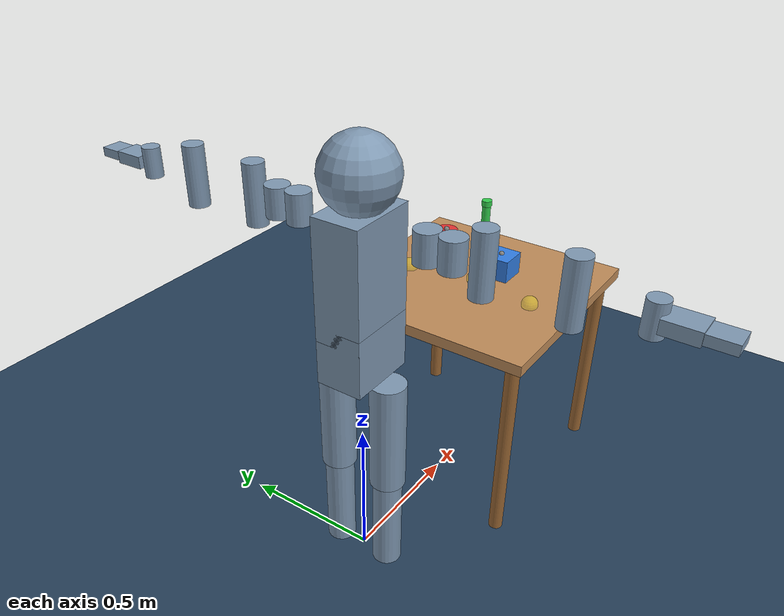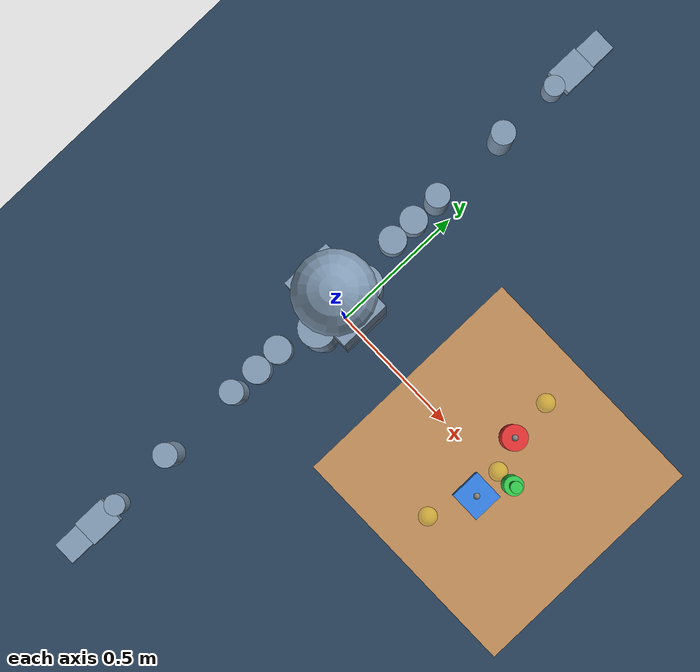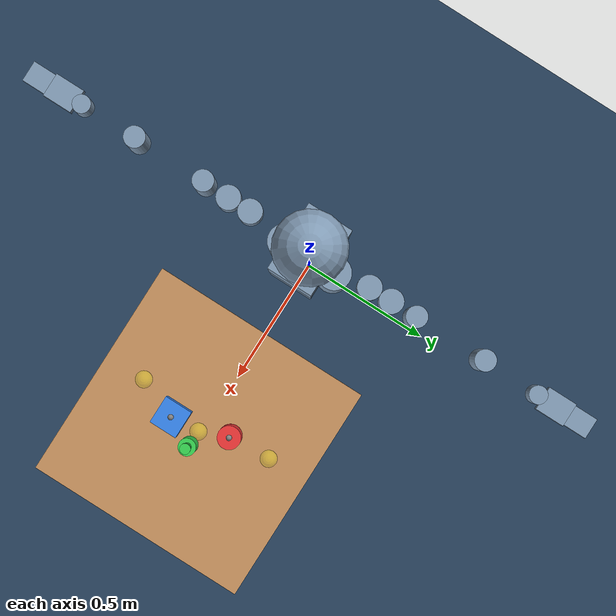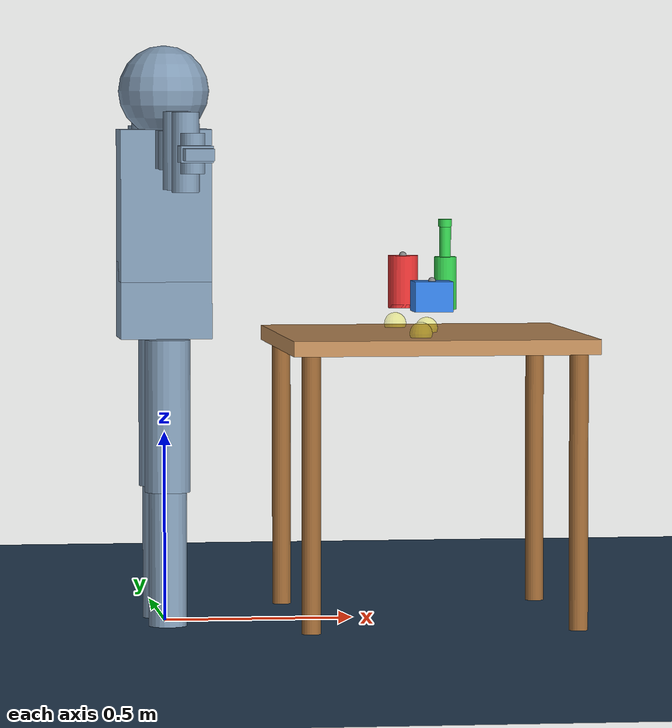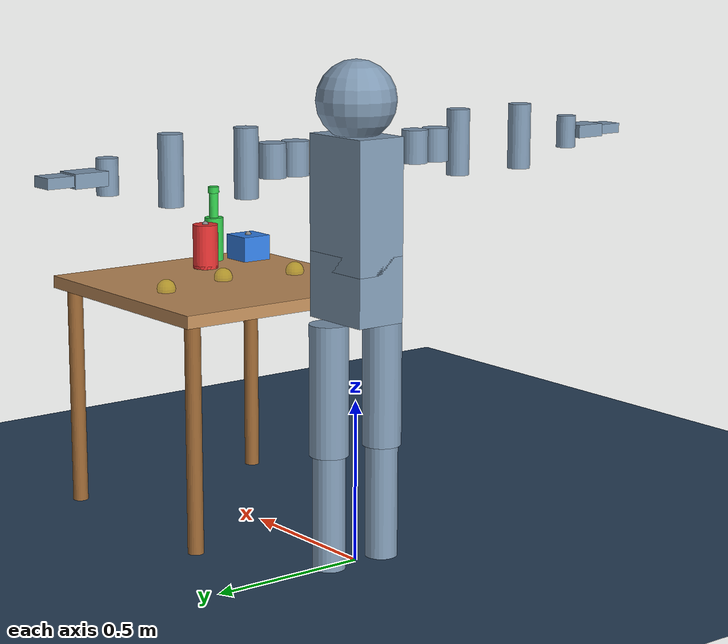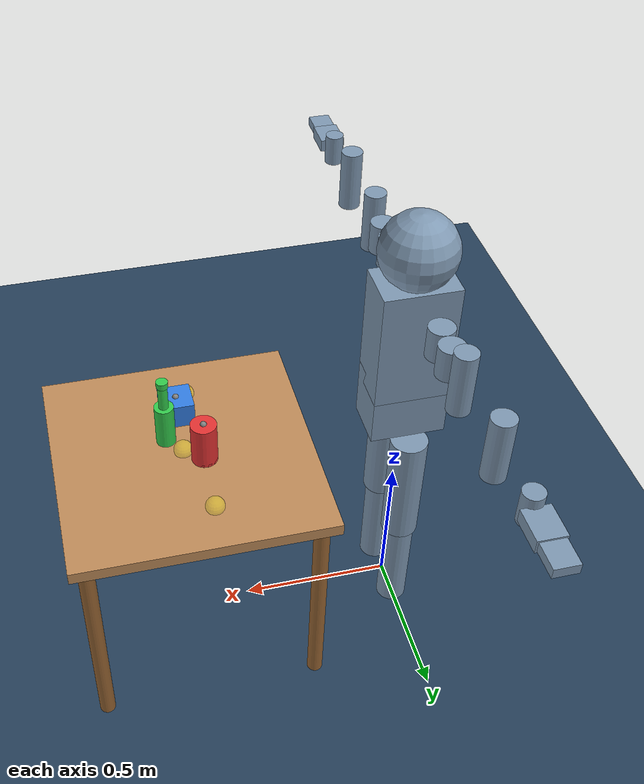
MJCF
<?xml version="1.0" encoding="utf-8"?>
<mujoco model="scene_vla">
  <compiler angle="radian" autolimits="true"/>

  <option gravity="0 0 -9.81" timestep="0.005"/>

  <include file="g1_vla.xml"/>

  <default>
    <default class="object">
      <geom contype="1" conaffinity="1" friction="0.8 0.02 0.001"/>
      <joint damping="0.05" armature="0.001" frictionloss="0.01"/>
    </default>
  </default>

  <asset>
    <texture name="wood" type="2d" builtin="flat" rgb1="0.65 0.45 0.25"
             rgb2="0.55 0.38 0.2" width="256" height="256"/>
    <material name="wood" texture="wood" reflectance="0.1"/>
    <material name="cup_mat" rgba="0.9 0.2 0.2 1"/>
    <material name="box_mat" rgba="0.2 0.5 0.9 1"/>
    <material name="bottle_mat" rgba="0.2 0.8 0.3 1"/>
    <material name="table_mat" rgba="0.75 0.55 0.35 1"/>
  </asset>

  <worldbody>
    <!-- Overhead light for scene illumination -->
    <light name="scene_overhead" pos="0.7 0 3" dir="0 0 -1"
           diffuse="0.9 0.9 0.9" specular="0.4 0.4 0.4" castshadow="true"/>
    <light name="scene_fill" pos="1.5 1.0 2.5" dir="-0.5 -0.5 -1"
           diffuse="0.4 0.4 0.5" specular="0.1 0.1 0.1"/>
    <light name="scene_back" pos="-0.5 -1.0 2.0" dir="0.3 0.5 -1"
           diffuse="0.3 0.3 0.35" specular="0.05 0.05 0.05"/>

    <!-- External third-person camera for visualization -->
    <camera name="external_cam" pos="1.5 1.2 1.8" xyaxes="-0.7 0.7 0 -0.3 -0.3 0.9"
            fovy="60"/>

    <!-- Table -->
    <body name="table" pos="0.7 0.0 0.0">
      <geom name="table_top" type="box" size="0.4 0.4 0.02" pos="0 0 0.74"
            material="table_mat" contype="1" conaffinity="1"/>
      <geom name="table_leg_fl" type="cylinder" size="0.025 0.37"
            pos="0.35 0.35 0.37" rgba="0.6 0.4 0.2 1"/>
      <geom name="table_leg_fr" type="cylinder" size="0.025 0.37"
            pos="0.35 -0.35 0.37" rgba="0.6 0.4 0.2 1"/>
      <geom name="table_leg_bl" type="cylinder" size="0.025 0.37"
            pos="-0.35 0.35 0.37" rgba="0.6 0.4 0.2 1"/>
      <geom name="table_leg_br" type="cylinder" size="0.025 0.37"
            pos="-0.35 -0.35 0.37" rgba="0.6 0.4 0.2 1"/>
    </body>

    <!-- Red cup (cylinder) — free body -->
    <body name="cup" pos="0.65 0.1 0.82">
      <freejoint name="cup_joint"/>
      <geom name="cup_body" type="cylinder" size="0.04 0.07" pos="0 0 0.07"
            class="object" material="cup_mat" mass="0.2"/>
      <geom name="cup_bottom" type="cylinder" size="0.04 0.005" pos="0 0 0.005"
            class="object" material="cup_mat" mass="0.02"/>
      <site name="cup_site" pos="0 0 0.14" size="0.01"/>
    </body>

    <!-- Blue box — free body -->
    <body name="box" pos="0.7 -0.1 0.82">
      <freejoint name="box_joint"/>
      <geom name="box_body" type="box" size="0.05 0.05 0.04" pos="0 0 0.04"
            class="object" material="box_mat" mass="0.3"/>
      <site name="box_site" pos="0 0 0.08" size="0.01"/>
    </body>

    <!-- Green bottle (capsule-like, built from cylinders) — free body -->
    <body name="bottle" pos="0.75 0.0 0.82">
      <freejoint name="bottle_joint"/>
      <geom name="bottle_lower" type="cylinder" size="0.03 0.07" pos="0 0 0.07"
            class="object" material="bottle_mat" mass="0.15"/>
      <geom name="bottle_neck" type="cylinder" size="0.015 0.04" pos="0 0 0.18"
            class="object" material="bottle_mat" mass="0.05"/>
      <geom name="bottle_cap" type="cylinder" size="0.018 0.01" pos="0 0 0.23"
            class="object" material="bottle_mat" mass="0.01"/>
      <site name="bottle_site" pos="0 0 0.14" size="0.01"/>
    </body>

    <!-- Target zone markers (visual only) -->
    <site name="target_left" pos="0.65 0.25 0.77" size="0.03" rgba="1 1 0 0.3"/>
    <site name="target_center" pos="0.70 0.0 0.77" size="0.03" rgba="1 1 0 0.3"/>
    <site name="target_right" pos="0.65 -0.25 0.77" size="0.03" rgba="1 1 0 0.3"/>
  </worldbody>

  <contact>
    <!-- Object-table contacts -->
    <pair geom1="table_top" geom2="cup_body"/>
    <pair geom1="table_top" geom2="cup_bottom"/>
    <pair geom1="table_top" geom2="box_body"/>
    <pair geom1="table_top" geom2="bottle_lower"/>
    <!-- Hand-object contacts -->
    <pair geom1="rh_col" geom2="cup_body"/>
    <pair geom1="rh_col" geom2="box_body"/>
    <pair geom1="rh_col" geom2="bottle_lower"/>
    <pair geom1="lh_col" geom2="cup_body"/>
    <pair geom1="lh_col" geom2="box_body"/>
    <pair geom1="lh_col" geom2="bottle_lower"/>
  </contact>

  <!-- Weld constraints for grasping (disabled by default, enabled via mj_data.eq_active) -->
  <equality>
    <weld name="grasp_cup" body1="right_hand" body2="cup"
          relpose="0 -0.03 0 1 0 0 0" active="false"/>
    <weld name="grasp_box" body1="right_hand" body2="box"
          relpose="0 -0.03 0 1 0 0 0" active="false"/>
    <weld name="grasp_bottle" body1="right_hand" body2="bottle"
          relpose="0 -0.03 0 1 0 0 0" active="false"/>
  </equality>

</mujoco>

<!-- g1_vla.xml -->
<!-- G1 Humanoid Robot MJCF for VLA Integration Lab 9
     Simplified model with ~25 actuated DOF for upper-body manipulation tasks.
     Based on Unitree G1 specification.
-->
<mujoco model="g1_vla">
  <compiler angle="radian" autolimits="true"/>

  <option gravity="0 0 -9.81" timestep="0.005"/>

  <default>
    <default class="g1">
      <joint damping="0.5" armature="0.01"/>
      <geom contype="1" conaffinity="1" friction="0.8 0.02 0.001" rgba="0.7 0.7 0.8 1"/>
      <motor ctrllimited="true"/>
    </default>
    <default class="collision">
      <geom contype="1" conaffinity="1" group="3"/>
    </default>
    <default class="visual">
      <geom contype="0" conaffinity="0" group="2" rgba="0.5 0.6 0.7 1"/>
    </default>
  </default>

  <asset>
    <texture name="grid" type="2d" builtin="checker" width="512" height="512"
             rgb1="0.1 0.2 0.3" rgb2="0.2 0.3 0.4"/>
    <material name="grid" texture="grid" texrepeat="8 8" reflectance="0.2"/>
    <material name="robot_body" rgba="0.5 0.6 0.7 1"/>
    <material name="robot_joint" rgba="0.3 0.4 0.5 1"/>
  </asset>

  <worldbody>
    <!-- Ground plane -->
    <geom name="floor" type="plane" size="5 5 0.1" material="grid" contype="1" conaffinity="1"/>

    <!-- Lighting -->
    <light name="main_light" pos="0 0 4" dir="0 0 -1" diffuse="0.8 0.8 0.8" specular="0.3 0.3 0.3" castshadow="true"/>
    <light name="fill_light" pos="2 2 3" dir="-1 -1 -1" diffuse="0.4 0.4 0.4" specular="0.1 0.1 0.1"/>

    <!-- G1 Robot Body -->
    <body name="pelvis" pos="0 0 0.85">
      <freejoint name="root"/>
      <geom name="pelvis_geom" class="visual" type="box" size="0.12 0.08 0.1" pos="0 0 0"/>
      <geom name="pelvis_col" class="collision" type="box" size="0.12 0.08 0.1" pos="0 0 0"/>
      <inertial mass="8.0" pos="0 0 0" diaginertia="0.05 0.05 0.03"/>

      <!-- Torso -->
      <body name="torso" pos="0 0 0.15">
        <joint name="torso_yaw" type="hinge" axis="0 0 1" range="-0.8 0.8" class="g1"/>
        <geom name="torso_geom" class="visual" type="box" size="0.12 0.08 0.2" pos="0 0 0.1"/>
        <geom name="torso_col" class="collision" type="box" size="0.12 0.08 0.2" pos="0 0 0.1"/>
        <inertial mass="12.0" pos="0 0 0.1" diaginertia="0.15 0.1 0.08"/>

        <!-- Head -->
        <body name="head" pos="0 0 0.35">
          <joint name="head_pitch" type="hinge" axis="0 1 0" range="-0.6 0.6" class="g1"/>
          <joint name="head_yaw" type="hinge" axis="0 0 1" range="-1.0 1.0" class="g1"/>
          <geom name="head_geom" class="visual" type="sphere" size="0.12" pos="0 0 0.05"/>
          <geom name="head_col" class="collision" type="sphere" size="0.12" pos="0 0 0.05"/>
          <inertial mass="2.0" pos="0 0 0.05" diaginertia="0.01 0.01 0.008"/>

          <!-- Head camera (egocentric) -->
          <camera name="head_cam" pos="0 0.12 0.05" euler="0 0 1.5708"
                  fovy="90"/>
        </body>

        <!-- Left arm -->
        <body name="left_shoulder_roll" pos="0.0 0.18 0.25">
          <joint name="left_shoulder_roll" type="hinge" axis="1 0 0" range="-1.5 1.5" class="g1"/>
          <geom name="lsr_geom" class="visual" type="cylinder" size="0.04 0.05" pos="0 0.04 0"/>
          <inertial mass="1.5" pos="0 0.04 0" diaginertia="0.005 0.005 0.002"/>

          <body name="left_shoulder_pitch" pos="0 0.08 0">
            <joint name="left_shoulder_pitch" type="hinge" axis="0 1 0" range="-2.0 2.0" class="g1"/>
            <geom name="lsp_geom" class="visual" type="cylinder" size="0.04 0.05" pos="0 0.04 0"/>
            <inertial mass="1.5" pos="0 0.04 0" diaginertia="0.005 0.005 0.002"/>

            <body name="left_shoulder_yaw" pos="0 0.08 0">
              <joint name="left_shoulder_yaw" type="hinge" axis="0 0 1" range="-1.5 1.5" class="g1"/>
              <geom name="lsy_geom" class="visual" type="cylinder" size="0.035 0.1" pos="0 0.05 0"/>
              <inertial mass="1.2" pos="0 0.05 0" diaginertia="0.004 0.004 0.001"/>

              <!-- Left elbow -->
              <body name="left_elbow" pos="0 0.25 0">
                <joint name="left_elbow" type="hinge" axis="0 1 0" range="-2.0 0.0" class="g1"/>
                <geom name="le_geom" class="visual" type="cylinder" size="0.035 0.1" pos="0 0.05 0"/>
                <inertial mass="1.0" pos="0 0.05 0" diaginertia="0.003 0.003 0.001"/>

                <!-- Left wrist -->
                <body name="left_wrist_roll" pos="0 0.22 0">
                  <joint name="left_wrist_roll" type="hinge" axis="0 0 1" range="-1.5 1.5" class="g1"/>
                  <geom name="lwr_geom" class="visual" type="cylinder" size="0.03 0.05" pos="0 0.03 0"/>
                  <inertial mass="0.5" pos="0 0.03 0" diaginertia="0.001 0.001 0.0005"/>

                  <body name="left_wrist_pitch" pos="0 0.06 0">
                    <joint name="left_wrist_pitch" type="hinge" axis="0 1 0" range="-1.0 1.0" class="g1"/>
                    <geom name="lwp_geom" class="visual" type="box" size="0.04 0.05 0.02" pos="0 0.04 0"/>
                    <inertial mass="0.5" pos="0 0.04 0" diaginertia="0.001 0.001 0.0005"/>

                    <!-- Left hand/gripper -->
                    <body name="left_hand" pos="0 0.08 0">
                      <joint name="left_gripper" type="slide" axis="0 0 1" range="0.0 0.08" class="g1"/>
                      <geom name="lh_geom" class="visual" type="box" size="0.035 0.06 0.015" pos="0 0.03 0"/>
                      <geom name="lh_col" class="collision" type="box" size="0.035 0.06 0.015" pos="0 0.03 0"/>
                      <inertial mass="0.3" pos="0 0.03 0" diaginertia="0.0005 0.0005 0.0002"/>
                      <site name="left_ee" pos="0 0.07 0" size="0.01"/>

                      <!-- Wrist camera -->
                      <camera name="left_wrist_cam" pos="0 0.0 0.03" euler="1.5708 0 0" fovy="90"/>
                    </body>
                  </body>
                </body>
              </body>
            </body>
          </body>
        </body>

        <!-- Right arm -->
        <body name="right_shoulder_roll" pos="0.0 -0.18 0.25">
          <joint name="right_shoulder_roll" type="hinge" axis="1 0 0" range="-1.5 1.5" class="g1"/>
          <geom name="rsr_geom" class="visual" type="cylinder" size="0.04 0.05" pos="0 -0.04 0"/>
          <inertial mass="1.5" pos="0 -0.04 0" diaginertia="0.005 0.005 0.002"/>

          <body name="right_shoulder_pitch" pos="0 -0.08 0">
            <joint name="right_shoulder_pitch" type="hinge" axis="0 1 0" range="-2.0 2.0" class="g1"/>
            <geom name="rsp_geom" class="visual" type="cylinder" size="0.04 0.05" pos="0 -0.04 0"/>
            <inertial mass="1.5" pos="0 -0.04 0" diaginertia="0.005 0.005 0.002"/>

            <body name="right_shoulder_yaw" pos="0 -0.08 0">
              <joint name="right_shoulder_yaw" type="hinge" axis="0 0 1" range="-1.5 1.5" class="g1"/>
              <geom name="rsy_geom" class="visual" type="cylinder" size="0.035 0.1" pos="0 -0.05 0"/>
              <inertial mass="1.2" pos="0 -0.05 0" diaginertia="0.004 0.004 0.001"/>

              <!-- Right elbow -->
              <body name="right_elbow" pos="0 -0.25 0">
                <joint name="right_elbow" type="hinge" axis="0 1 0" range="0.0 2.0" class="g1"/>
                <geom name="re_geom" class="visual" type="cylinder" size="0.035 0.1" pos="0 -0.05 0"/>
                <inertial mass="1.0" pos="0 -0.05 0" diaginertia="0.003 0.003 0.001"/>

                <!-- Right wrist -->
                <body name="right_wrist_roll" pos="0 -0.22 0">
                  <joint name="right_wrist_roll" type="hinge" axis="0 0 1" range="-1.5 1.5" class="g1"/>
                  <geom name="rwr_geom" class="visual" type="cylinder" size="0.03 0.05" pos="0 -0.03 0"/>
                  <inertial mass="0.5" pos="0 -0.03 0" diaginertia="0.001 0.001 0.0005"/>

                  <body name="right_wrist_pitch" pos="0 -0.06 0">
                    <joint name="right_wrist_pitch" type="hinge" axis="0 1 0" range="-1.0 1.0" class="g1"/>
                    <geom name="rwp_geom" class="visual" type="box" size="0.04 0.05 0.02" pos="0 -0.04 0"/>
                    <inertial mass="0.5" pos="0 -0.04 0" diaginertia="0.001 0.001 0.0005"/>

                    <!-- Right hand/gripper -->
                    <body name="right_hand" pos="0 -0.08 0">
                      <joint name="right_gripper" type="slide" axis="0 0 1" range="0.0 0.08" class="g1"/>
                      <geom name="rh_geom" class="visual" type="box" size="0.035 0.06 0.015" pos="0 -0.03 0"/>
                      <geom name="rh_col" class="collision" type="box" size="0.035 0.06 0.015" pos="0 -0.03 0"/>
                      <inertial mass="0.3" pos="0 -0.03 0" diaginertia="0.0005 0.0005 0.0002"/>
                      <site name="right_ee" pos="0 -0.07 0" size="0.01"/>

                      <!-- Right wrist camera -->
                      <camera name="right_wrist_cam" pos="0 0.0 0.03" euler="1.5708 0 0" fovy="90"/>
                    </body>
                  </body>
                </body>
              </body>
            </body>
          </body>
        </body>

      </body> <!-- torso -->

      <!-- Left leg (simplified for standing balance) -->
      <body name="left_hip_yaw" pos="0.0 0.1 -0.1">
        <joint name="left_hip_yaw" type="hinge" axis="0 0 1" range="-0.8 0.8" class="g1"/>
        <inertial mass="0.5" pos="0 0 0" diaginertia="0.001 0.001 0.001"/>
        <body name="left_hip_roll" pos="0 0 0">
          <joint name="left_hip_roll" type="hinge" axis="1 0 0" range="-0.5 0.5" class="g1"/>
          <inertial mass="0.5" pos="0 0 0" diaginertia="0.001 0.001 0.001"/>
          <body name="left_hip_pitch" pos="0 0 0">
            <joint name="left_hip_pitch" type="hinge" axis="0 1 0" range="-1.5 1.5" class="g1"/>
            <geom name="lthigh_geom" class="visual" type="cylinder" size="0.06 0.2" pos="0 0 -0.2"/>
            <geom name="lthigh_col" class="collision" type="cylinder" size="0.06 0.2" pos="0 0 -0.2"/>
            <inertial mass="3.0" pos="0 0 -0.2" diaginertia="0.02 0.02 0.005"/>

            <body name="left_knee" pos="0 0 -0.4">
              <joint name="left_knee" type="hinge" axis="0 1 0" range="-0.1 2.5" class="g1"/>
              <geom name="lshank_geom" class="visual" type="cylinder" size="0.05 0.18" pos="0 0 -0.18"/>
              <geom name="lshank_col" class="collision" type="cylinder" size="0.05 0.18" pos="0 0 -0.18"/>
              <inertial mass="2.0" pos="0 0 -0.18" diaginertia="0.01 0.01 0.002"/>

              <body name="left_ankle" pos="0 0 -0.36">
                <joint name="left_ankle_pitch" type="hinge" axis="0 1 0" range="-0.8 0.5" class="g1"/>
                <joint name="left_ankle_roll" type="hinge" axis="1 0 0" range="-0.4 0.4" class="g1"/>
                <geom name="lfoot_geom" class="visual" type="box" size="0.1 0.05 0.03" pos="0.02 0 -0.03"/>
                <geom name="lfoot_col" class="collision" type="box" size="0.1 0.05 0.03" pos="0.02 0 -0.03"/>
                <inertial mass="1.0" pos="0.02 0 -0.03" diaginertia="0.003 0.005 0.005"/>
              </body>
            </body>
          </body>
        </body>
      </body>

      <!-- Right leg (simplified) -->
      <body name="right_hip_yaw" pos="0.0 -0.1 -0.1">
        <joint name="right_hip_yaw" type="hinge" axis="0 0 1" range="-0.8 0.8" class="g1"/>
        <inertial mass="0.5" pos="0 0 0" diaginertia="0.001 0.001 0.001"/>
        <body name="right_hip_roll" pos="0 0 0">
          <joint name="right_hip_roll" type="hinge" axis="1 0 0" range="-0.5 0.5" class="g1"/>
          <inertial mass="0.5" pos="0 0 0" diaginertia="0.001 0.001 0.001"/>
          <body name="right_hip_pitch" pos="0 0 0">
            <joint name="right_hip_pitch" type="hinge" axis="0 1 0" range="-1.5 1.5" class="g1"/>
            <geom name="rthigh_geom" class="visual" type="cylinder" size="0.06 0.2" pos="0 0 -0.2"/>
            <geom name="rthigh_col" class="collision" type="cylinder" size="0.06 0.2" pos="0 0 -0.2"/>
            <inertial mass="3.0" pos="0 0 -0.2" diaginertia="0.02 0.02 0.005"/>

            <body name="right_knee" pos="0 0 -0.4">
              <joint name="right_knee" type="hinge" axis="0 1 0" range="-0.1 2.5" class="g1"/>
              <geom name="rshank_geom" class="visual" type="cylinder" size="0.05 0.18" pos="0 0 -0.18"/>
              <geom name="rshank_col" class="collision" type="cylinder" size="0.05 0.18" pos="0 0 -0.18"/>
              <inertial mass="2.0" pos="0 0 -0.18" diaginertia="0.01 0.01 0.002"/>

              <body name="right_ankle" pos="0 0 -0.36">
                <joint name="right_ankle_pitch" type="hinge" axis="0 1 0" range="-0.8 0.5" class="g1"/>
                <joint name="right_ankle_roll" type="hinge" axis="1 0 0" range="-0.4 0.4" class="g1"/>
                <geom name="rfoot_geom" class="visual" type="box" size="0.1 0.05 0.03" pos="0.02 0 -0.03"/>
                <geom name="rfoot_col" class="collision" type="box" size="0.1 0.05 0.03" pos="0.02 0 -0.03"/>
                <inertial mass="1.0" pos="0.02 0 -0.03" diaginertia="0.003 0.005 0.005"/>
              </body>
            </body>
          </body>
        </body>
      </body>

    </body> <!-- pelvis -->
  </worldbody>

  <actuator>
    <!-- Torso -->
    <motor name="torso_yaw" joint="torso_yaw" gear="100" ctrlrange="-80 80"/>

    <!-- Head -->
    <motor name="head_pitch" joint="head_pitch" gear="30" ctrlrange="-20 20"/>
    <motor name="head_yaw" joint="head_yaw" gear="30" ctrlrange="-20 20"/>

    <!-- Left arm -->
    <motor name="left_shoulder_roll" joint="left_shoulder_roll" gear="100" ctrlrange="-80 80"/>
    <motor name="left_shoulder_pitch" joint="left_shoulder_pitch" gear="100" ctrlrange="-80 80"/>
    <motor name="left_shoulder_yaw" joint="left_shoulder_yaw" gear="50" ctrlrange="-40 40"/>
    <motor name="left_elbow" joint="left_elbow" gear="50" ctrlrange="-40 40"/>
    <motor name="left_wrist_roll" joint="left_wrist_roll" gear="20" ctrlrange="-15 15"/>
    <motor name="left_wrist_pitch" joint="left_wrist_pitch" gear="20" ctrlrange="-15 15"/>
    <motor name="left_gripper" joint="left_gripper" gear="10" ctrlrange="0 1"/>

    <!-- Right arm -->
    <motor name="right_shoulder_roll" joint="right_shoulder_roll" gear="100" ctrlrange="-80 80"/>
    <motor name="right_shoulder_pitch" joint="right_shoulder_pitch" gear="100" ctrlrange="-80 80"/>
    <motor name="right_shoulder_yaw" joint="right_shoulder_yaw" gear="50" ctrlrange="-40 40"/>
    <motor name="right_elbow" joint="right_elbow" gear="50" ctrlrange="-40 40"/>
    <motor name="right_wrist_roll" joint="right_wrist_roll" gear="20" ctrlrange="-15 15"/>
    <motor name="right_wrist_pitch" joint="right_wrist_pitch" gear="20" ctrlrange="-15 15"/>
    <motor name="right_gripper" joint="right_gripper" gear="10" ctrlrange="0 1"/>

    <!-- Left leg -->
    <motor name="left_hip_yaw" joint="left_hip_yaw" gear="150" ctrlrange="-100 100"/>
    <motor name="left_hip_roll" joint="left_hip_roll" gear="150" ctrlrange="-100 100"/>
    <motor name="left_hip_pitch" joint="left_hip_pitch" gear="200" ctrlrange="-150 150"/>
    <motor name="left_knee" joint="left_knee" gear="200" ctrlrange="-150 150"/>
    <motor name="left_ankle_pitch" joint="left_ankle_pitch" gear="80" ctrlrange="-60 60"/>
    <motor name="left_ankle_roll" joint="left_ankle_roll" gear="40" ctrlrange="-30 30"/>

    <!-- Right leg -->
    <motor name="right_hip_yaw" joint="right_hip_yaw" gear="150" ctrlrange="-100 100"/>
    <motor name="right_hip_roll" joint="right_hip_roll" gear="150" ctrlrange="-100 100"/>
    <motor name="right_hip_pitch" joint="right_hip_pitch" gear="200" ctrlrange="-150 150"/>
    <motor name="right_knee" joint="right_knee" gear="200" ctrlrange="-150 150"/>
    <motor name="right_ankle_pitch" joint="right_ankle_pitch" gear="80" ctrlrange="-60 60"/>
    <motor name="right_ankle_roll" joint="right_ankle_roll" gear="40" ctrlrange="-30 30"/>
  </actuator>

  <sensor>
    <accelerometer name="imu_acc" site="left_ee"/>
    <gyro name="imu_gyro" site="left_ee"/>
    <framepos name="left_ee_pos" objtype="site" objname="left_ee"/>
    <framepos name="right_ee_pos" objtype="site" objname="right_ee"/>
    <framequat name="left_ee_quat" objtype="site" objname="left_ee"/>
    <framequat name="right_ee_quat" objtype="site" objname="right_ee"/>
  </sensor>

</mujoco>
